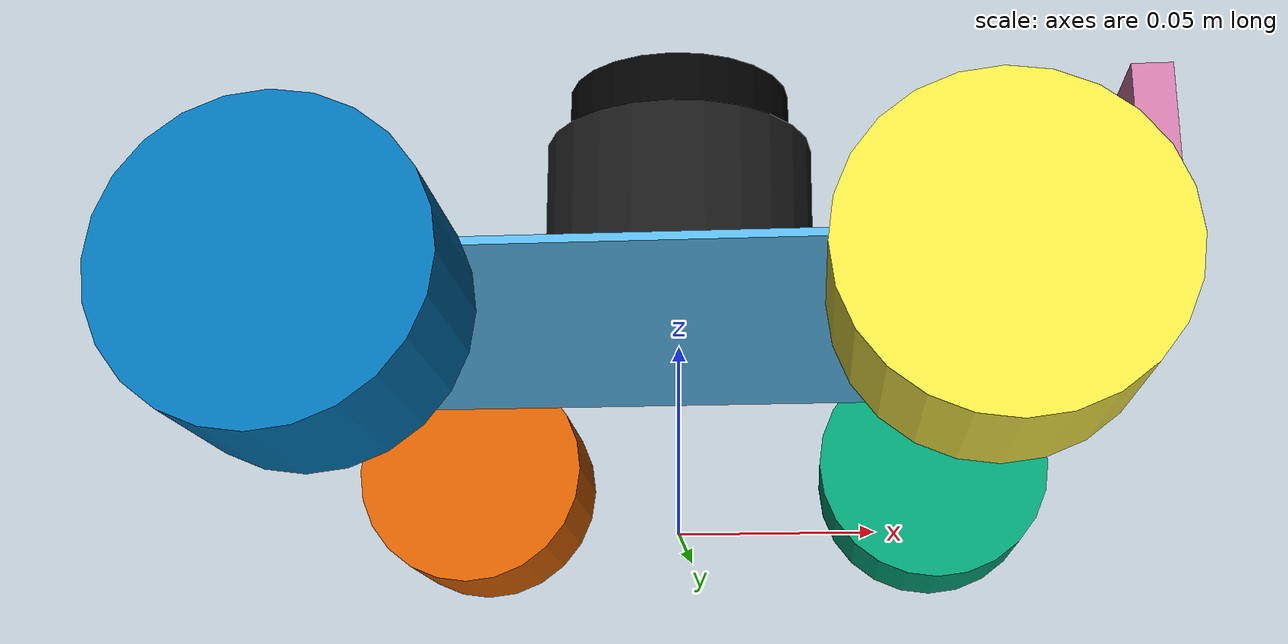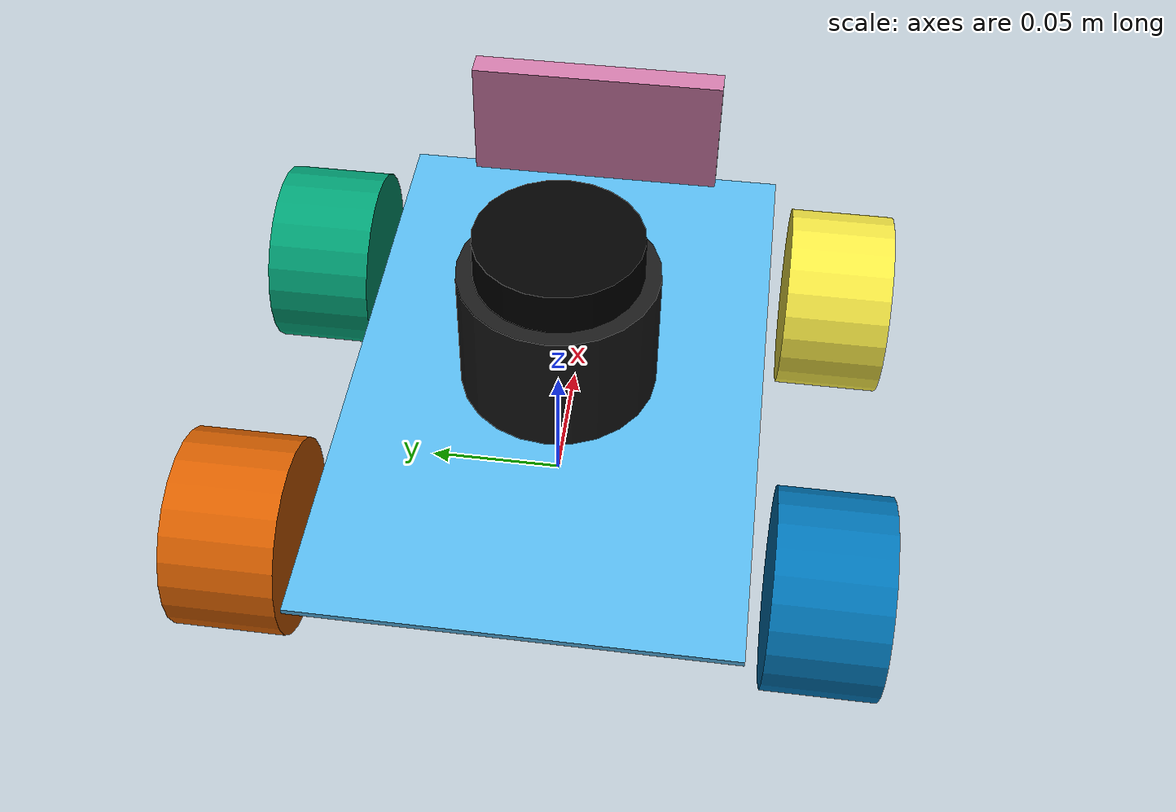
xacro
<?xml version="1.0"?>
<robot name="airavat_1.0" xmlns:xacro="http://www.ros.org/wiki/xacro">

    <xacro:include filename="my_airavat_1.0_common_prop.xacro"/>
    <xacro:include filename="my_airavat_1.0_base.xacro"/>
    <xacro:include filename="my_airavat_1.0_gazebo.xacro"/>
    <xacro:include filename="camera.xacro" />
    <xacro:include filename="imu.xacro" />
    <xacro:include filename="lidar.xacro" />

</robot>

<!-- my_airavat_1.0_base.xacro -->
<robot name="airavat1.0" xmlns:xacro="https://www.ros.org/wiki/xacro">

    <xacro:property name="ch_length" value="0.235" />
    <xacro:property name="ch_width" value="0.150" />
    <xacro:property name="ch_height" value="0.002" />

    <xacro:property name="wh_width" value="0.0395" />
    <xacro:property name="wh_diameter" value="0.07" />

    <xacro:property name="wh_ch_dist" value = "0.007" />
    <xacro:property name="wh_ch_offset" value = "0.018" />

    <xacro:property name="wheelbase" value ="0.145" />
    <xacro:property name="trackwidth" value = "0.2034" />

    <xacro:property name="ch_mass" value = "0.9" />
    <xacro:property name="wh_mass" value = "0.04" />

    <xacro:macro name="wheel_link" params="prefix">
        <link name="wheel_${prefix}">
            <visual>
                <geometry>
                    <cylinder radius = "${wh_diameter/2}" length = "${wh_width}" />
                </geometry>
                <origin xyz ="0 0 0" rpy = "${pi/2.0} 0 0" />
                <material name = "blrubber" />
            </visual>
            <collision>
                <geometry>
                    <sphere radius = "${wh_diameter/2}" />
                </geometry>
                <origin xyz ="0 0 0" rpy = "${pi/2} 0 0" />
            </collision>
            <xacro:wheel_inertia m="${wh_mass}" rad="${wh_diameter/2}" length="${wh_width}" o_xyz="0 0 0" o_rpy="${pi/2.0} 0 0" />
        </link>
    </xacro:macro>

    <link name="base_footprint">
        <inertial>
            <mass value = "0.01" />
            <inertia ixx="1e-4" ixy="0" ixz="0" iyy="1e-4" iyz="0" izz="1e-4" />
            <origin xyz="0 0 0" rpy="0 0 0" />
        </inertial>
    </link>

    <joint name="base_joint" type = "fixed">
        <parent link = "base_footprint" />
        <child link = "base_link" />
        <origin xyz = "0 0 ${wh_diameter/2 + wh_ch_offset + ch_height/2}" rpy = "0 0 0" />
    </joint>

    <link name = "base_link">
        <visual>
            <geometry>
                <box size = "${ch_length} ${ch_width} ${ch_height}" />
            </geometry>
            <origin xyz = "0 0 0" rpy = "0 0 0" />
            <material name="steel" />
        </visual>
        <collision>
            <geometry>
                <box size="${ch_length} ${ch_width} ${ch_height}" />
            </geometry>
            <origin xyz="0 0 0" rpy="0 0 0" />
        </collision>
        <xacro:box_inertia m="${ch_mass}" x="${ch_length}" y="${ch_width}" z="${ch_height}" o_xyz="0 0 0" o_rpy="0 0 0" />
    </link>

    <xacro:wheel_link prefix="FL" />
    <xacro:wheel_link prefix="FR" />
    <xacro:wheel_link prefix="RR" />
    <xacro:wheel_link prefix="RL" />

    <joint name = "ch_wheel_FL" type = "continuous" >
        <parent link = "base_link" />
        <child link = "wheel_FL" />
        <axis xyz = "0 1 0" />
        <origin xyz = "${wheelbase/2} ${trackwidth/2} -${ch_height/2 + wh_ch_offset}" rpy = "0 0 0" />
    </joint>

    <joint name = "ch_wheel_FR" type = "continuous" >
        <parent link = "base_link" />
        <child link = "wheel_FR" />
        <axis xyz = "0 1 0" />
        <origin xyz = "${wheelbase/2} -${trackwidth/2} -${ch_height/2 + wh_ch_offset}" rpy = "0 0 0" />
    </joint>

    <joint name = "ch_wheel_RR" type = "continuous" >
        <parent link = "base_link" />
        <child link = "wheel_RR" />
        <axis xyz = "0 1 0" />
        <origin xyz = "-${wheelbase/2} -${trackwidth/2} -${ch_height/2 + wh_ch_offset}" rpy = "0 0 0" />
    </joint>

    <joint name = "ch_wheel_RL" type = "continuous" >
        <parent link = "base_link" />
        <child link = "wheel_RL" />
        <axis xyz = "0 1 0" />
        <origin xyz = "-${wheelbase/2} ${trackwidth/2} -${ch_height/2 + wh_ch_offset}" rpy = "0 0 0" />
    </joint>

</robot>

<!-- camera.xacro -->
<robot name="airavat1.0" xmlns:xacro="https://www.ros.org/wiki/xacro">

    <xacro:property name="camera_length" value = "0.01" />
    <xacro:property name="camera_width" value = "0.1" />
    <xacro:property name="camera_height" value = "0.05" />
    <xacro:property name="camera_weight" value = "0.001" />

    <link name="camera_link">
        <visual>
            <geometry>
                <box size="${camera_length} ${camera_width} ${camera_height}"/>
            </geometry>
            <material name="blrubber" />
        </visual>
        <collision>
            <geometry>
                <box size="${camera_length} ${camera_width} ${camera_height}"/>
            </geometry>
        </collision>
        <xacro:box_inertia m="${camera_weight}" x="${camera_length}" y="${camera_width}" z="${camera_height}" o_xyz="0 0 0" o_rpy="0 0 0" />
    </link>

    <joint name="base_camera_joint" type="fixed">
        <parent link="base_link" />
        <child link="camera_link" />
        <origin xyz="${ch_length/2} 0 ${camera_height/2}" rpy="0 0 0" />
    </joint>

    <gazebo reference="camera_link">
        <sensor name="camera" type="camera">
            <camera>
                <horizontal_fov>1.3962634</horizontal_fov>
                <image>
                    <width>320</width>
                    <height>240</height>
                    <format>R8G8B8</format>
                </image>
                <clip>
                    <near>0.1</near>
                    <far>15</far>
                </clip>
                <noise>
                    <type>gaussian</type>
                    <mean>0.0</mean>
                    <stddev>0.007</stddev>
                </noise>
                <optical_frame_id>camera_link_optical</optical_frame_id>
                <camera_info_topic>camera/camera_info</camera_info_topic>
            </camera>
            <always_on>1</always_on>
            <update_rate>5</update_rate>
            <visualize>true</visualize>
            <topic>camera/image_raw</topic>
        </sensor>
    </gazebo>

</robot>

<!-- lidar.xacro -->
<robot name="airavat1.0" xmlns:xacro="https://www.ros.org/wiki/xacro">

  <!-- LiDAR properties -->
  <xacro:property name="lidar_diameter" value="0.06" />
  <xacro:property name="lidar_height" value="0.016" />
  <xacro:property name="lidar_mass" value="0.075" />

  <xacro:property name="lidar_base_diameter" value="0.072" />
  <xacro:property name="lidar_base_height" value="0.05" />
  <xacro:property name="lidar_base_mass" value="0.050" />

  <link name="lidar_base">
    <visual>
      <origin xyz="0 0 0" rpy="0 0 0"/>
      <geometry>
        <cylinder radius="${lidar_base_diameter/2}" length="${lidar_base_height}" />
      </geometry>
      <material name="gray">
        <color rgba="0.1 0.1 0.1 1" />
      </material>
    </visual>
    <collision>
      <geometry>
        <cylinder radius="${lidar_base_diameter/2}" length="${lidar_base_height}" />
      </geometry>
    </collision>
    <xacro:wheel_inertia m="${lidar_base_mass}" rad="${lidar_base_diameter/2}" length="${lidar_base_height}" o_xyz="0 0 0" o_rpy="0 0 0" />
  </link>

  <joint name="base_lidar_base_joint" type="fixed">
    <parent link="base_link" />
    <child link="lidar_base" />
    <origin xyz="0 0 ${ch_height/2 + lidar_base_height/2}" rpy="0 0 0" />
  </joint>

  <!-- LiDAR Link -->
  <link name="lidar_link">
    <visual>
      <geometry>
        <cylinder radius="${lidar_diameter/2}" length="${lidar_height}"/>
      </geometry>
      <material name="black">
        <color rgba="0 0 0 1"/>
      </material>
    </visual>
    <collision>
      <geometry>
        <cylinder radius="${lidar_diameter/2}" length="${lidar_height}"/>
      </geometry>
    </collision>
    <xacro:wheel_inertia m="${lidar_mass}" rad="${lidar_diameter/2}" length="${lidar_height}" o_xyz="0 0 0" o_rpy="0 0 0" />
  </link>

  <!-- LiDAR Joint -->
  <joint name="lidar_joint" type="fixed">
    <parent link="lidar_base" />
    <child link="lidar_link" />
    <origin xyz="0 0 ${lidar_base_height/2 + lidar_height/2}" rpy="0 0 0" />
  </joint>

  <!-- LiDAR Sensor -->
  <gazebo reference="lidar_link">
    <sensor name="gpu_lidar" type="gpu_lidar">
      <always_on>1</always_on>
      <update_rate>2</update_rate>
      <visualize>true</visualize>
      <frame_id>lidar_link</frame_id>
      <topic>lidar</topic>
      <ray>
        <scan>
          <horizontal>
            <samples>180</samples>
            <resolution>1</resolution>
            <min_angle>-3.14</min_angle>
            <max_angle>3.14</max_angle>
          </horizontal>
          <vertical>
            <samples>1</samples>
            <resolution>0.01</resolution>
            <min_angle>0</min_angle>
            <max_angle>0</max_angle>
          </vertical>
        </scan>
        <range>
          <min>0.1</min>
          <max>5.0</max>
          <resolution>0.01</resolution>
        </range>
      </ray>
    </sensor>
  </gazebo>

</robot>
